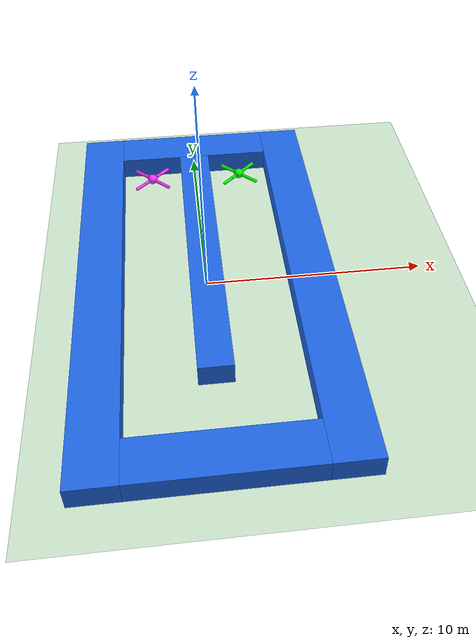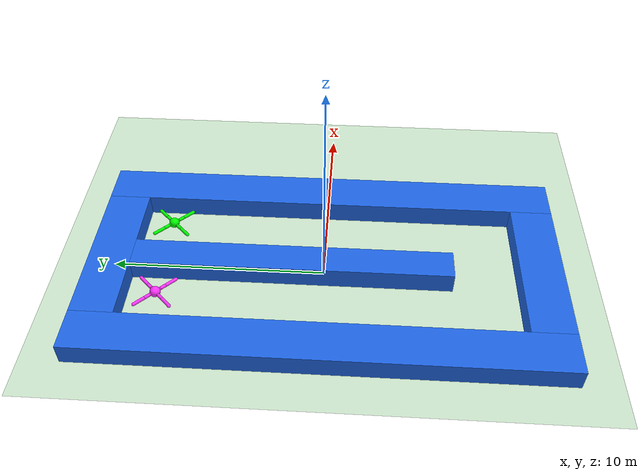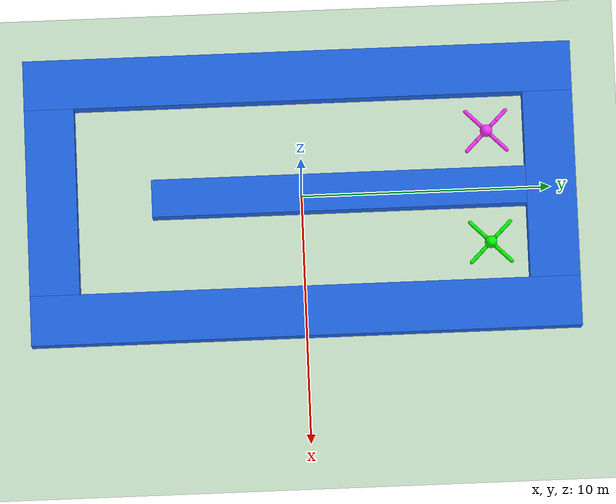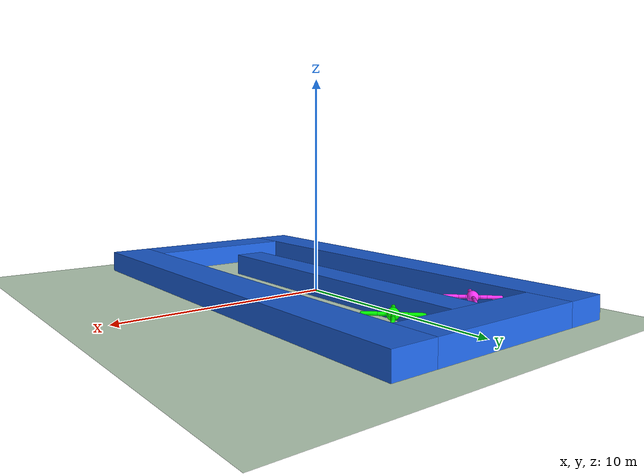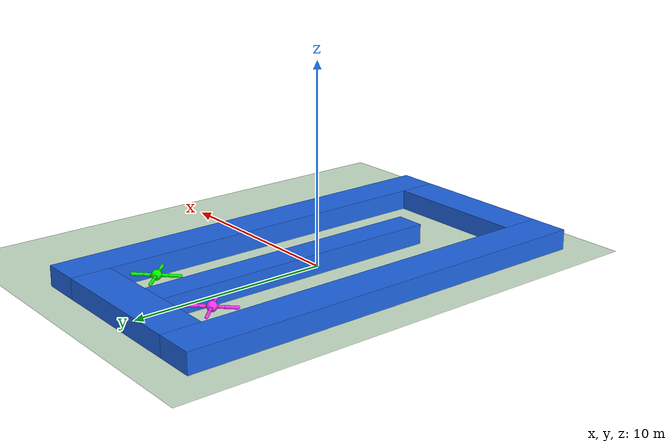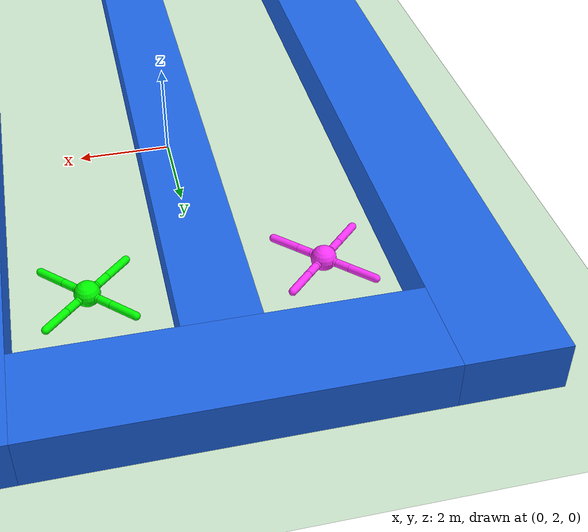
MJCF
<?xml version="1.0" encoding="utf-8"?>
<mujoco model="antmaze">
    <include file="config_dt3.xml"></include>
    <include file="assets.xml"></include>
    <worldbody>
        <light cutoff="100" diffuse="1 1 1" dir="-0 0 -1.3" directional="true" exponent="1" pos="0 0 1.3" specular=".1 .1 .1"/>
        <geom conaffinity="1" condim="3" material="MatPlane" name="floor" pos="0 0 0" rgba="0.8 0.9 0.8 1" size="50 50 50" type="plane"/>
        <include file="u_long.xml"></include>
        <include file="ant_start.xml"></include>
        <include file="ant_goal.xml"></include>

        <!--By default, this goal will be hidden under the floor-->
    </worldbody>
    <actuator>
        <motor ctrllimited="true" ctrlrange="-1.0 1.0" joint="hip_4" gear="10"/>
        <motor ctrllimited="true" ctrlrange="-1.0 1.0" joint="ankle_4" gear="10"/>
        <motor ctrllimited="true" ctrlrange="-1.0 1.0" joint="hip_1" gear="10"/>
        <motor ctrllimited="true" ctrlrange="-1.0 1.0" joint="ankle_1" gear="10"/>
        <motor ctrllimited="true" ctrlrange="-1.0 1.0" joint="hip_2" gear="10"/>
        <motor ctrllimited="true" ctrlrange="-1.0 1.0" joint="ankle_2" gear="10"/>
        <motor ctrllimited="true" ctrlrange="-1.0 1.0" joint="hip_3" gear="10"/>
        <motor ctrllimited="true" ctrlrange="-1.0 1.0" joint="ankle_3" gear="10"/>
    </actuator>
</mujoco>

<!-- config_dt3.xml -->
<mujoco>
    <compiler angle="degree" coordinate="local" inertiafromgeom="true"/>
    <option integrator="RK4" timestep="0.03"/>
    <default>
        <joint armature="1" damping="1" limited="true"/>
        <geom conaffinity="0" condim="3" density="5.0" friction="1 0.5 0.5" margin="0.01" rgba="0.8 0.6 0.4 1"/>
    </default>
</mujoco>

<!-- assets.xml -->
<mujoco>
    <asset>
        <texture builtin="gradient" height="100" rgb1="1 1 1" rgb2="0 0 0" type="skybox" width="100"/>
        <texture builtin="flat" height="1278" mark="cross" markrgb="1 1 1" name="texgeom" random="0.01" rgb1="0.8 0.6 0.4" rgb2="0.8 0.6 0.4" type="cube" width="127"/>
        <texture builtin="checker" height="100" width="100" name="texplane" rgb1="0.5 0.5 0.5" rgb2="0.8 0.8 0.8" type="2d"/>

        <material name="MatPlane" reflectance="0.5" shininess="1" specular="1" texrepeat="60 60" texture="texplane"/>
        <material name="geom" texture="texgeom" texuniform="true"/>

    </asset>
</mujoco>

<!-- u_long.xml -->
<mujoco>
    <body name="walls" pos="0 0 0">
        <body name="innerwall" pos="0 0 0">
            <geom type="box" pos="0 1.5 0" size="0.75 7.5 1"
                  rgba=".12 .4 .9 1"
                  contype="3" conaffinity="3" />
        </body>
        <body name="outerwall" pos="0 0 0">
            <geom type="box" pos="0 10.0 0" size="3.75 1 1"
                  rgba=".12 .4 .9 1"
                  contype="2" conaffinity="3" />
            <geom type="box" pos="0 -10.0 0" size="3.75 1 1"
                  rgba=".12 .4 .9 1"
                  contype="2" conaffinity="3" />
            <geom type="box" pos="4.75 0 0" size="1 11.0 1"
                  rgba=".12 .4 .9 1"
                  contype="2" conaffinity="3" />
            <geom type="box" pos="-4.75 0 0" size="1 11.0 1"
                  rgba=".12 .4 .9 1"
                  contype="2" conaffinity="3" />
        </body>
    </body>
</mujoco>

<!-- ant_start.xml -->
<!-- Same a gym ant but with gear ratio of 30 and sites -->
<mujoco model="ant">
    <body name="torso" pos="-2.25 7.50 0.75">
      <geom name="torso_geom" pos="0 0 0" size="0.25" type="sphere" rgba="1.0 0.2 1.0 1.0" />
      <joint armature="0" damping="0" limited="false" margin="0.01" name="root" pos="0 0 0" type="free"/>
      <body name="front_left_leg" pos="0 0 0">
        <geom fromto="0.0 0.0 0.0 0.2 0.2 0.0" name="aux_1_geom" size="0.08" type="capsule" rgba="1.0 0.2 1.0 1.0" />
        <body name="aux_1" pos="0.2 0.2 0">
          <joint axis="0 0 1" name="hip_1" pos="0.0 0.0 0.0" range="-30 30" type="hinge"/>
          <geom fromto="0.0 0.0 0.0 0.2 0.2 0.0" name="left_leg_geom" size="0.08" type="capsule" rgba="1.0 0.2 1.0 1.0" />
          <body pos="0.2 0.2 0">
            <joint axis="-1 1 0" name="ankle_1" pos="0.0 0.0 0.0" range="30 70" type="hinge"/>
            <geom fromto="0.0 0.0 0.0 0.4 0.4 0.0" name="left_ankle_geom" size="0.08" type="capsule" rgba="1.0 0.2 1.0 1.0" />
          </body>
        </body>
      </body>
      <body name="front_right_leg" pos="0 0 0">
        <geom fromto="0.0 0.0 0.0 -0.2 0.2 0.0" name="aux_2_geom" size="0.08" type="capsule" rgba="1.0 0.2 1.0 1.0" />
        <body name="aux_2" pos="-0.2 0.2 0">
          <joint axis="0 0 1" name="hip_2" pos="0.0 0.0 0.0" range="-30 30" type="hinge"/>
          <geom fromto="0.0 0.0 0.0 -0.2 0.2 0.0" name="right_leg_geom" size="0.08" type="capsule" rgba="1.0 0.2 1.0 1.0" />
          <body pos="-0.2 0.2 0">
            <joint axis="1 1 0" name="ankle_2" pos="0.0 0.0 0.0" range="-70 -30" type="hinge"/>
            <geom fromto="0.0 0.0 0.0 -0.4 0.4 0.0" name="right_ankle_geom" size="0.08" type="capsule" rgba="1.0 0.2 1.0 1.0" />
          </body>
        </body>
      </body>
      <body name="back_leg" pos="0 0 0">
        <geom fromto="0.0 0.0 0.0 -0.2 -0.2 0.0" name="aux_3_geom" size="0.08" type="capsule" rgba="1.0 0.2 1.0 1.0" />
        <body name="aux_3" pos="-0.2 -0.2 0">
          <joint axis="0 0 1" name="hip_3" pos="0.0 0.0 0.0" range="-30 30" type="hinge"/>
          <geom fromto="0.0 0.0 0.0 -0.2 -0.2 0.0" name="back_leg_geom" size="0.08" type="capsule" rgba="1.0 0.2 1.0 1.0" />
          <body pos="-0.2 -0.2 0">
            <joint axis="-1 1 0" name="ankle_3" pos="0.0 0.0 0.0" range="-70 -30" type="hinge"/>
            <geom fromto="0.0 0.0 0.0 -0.4 -0.4 0.0" name="third_ankle_geom" size="0.08" type="capsule" rgba="1.0 0.2 1.0 1.0"
            />
          </body>
        </body>
      </body>
      <body name="right_back_leg" pos="0 0 0">
        <geom fromto="0.0 0.0 0.0 0.2 -0.2 0.0" name="aux_4_geom" size="0.08" type="capsule" rgba="1.0 0.2 1.0 1.0" />
        <body name="aux_4" pos="0.2 -0.2 0">
          <joint axis="0 0 1" name="hip_4" pos="0.0 0.0 0.0" range="-30 30" type="hinge"/>
          <geom fromto="0.0 0.0 0.0 0.2 -0.2 0.0" name="rightback_leg_geom" size="0.08" type="capsule" rgba="1.0 0.2 1.0 1.0" />
          <body pos="0.2 -0.2 0">
            <joint axis="1 1 0" name="ankle_4" pos="0.0 0.0 0.0" range="30 70" type="hinge"/>
            <geom fromto="0.0 0.0 0.0 0.4 -0.4 0.0" name="fourth_ankle_geom" size="0.08" type="capsule" rgba="1.0 0.2 1.0 1.0"
                />
          </body>
        </body>
      </body>
    </body>
</mujoco>

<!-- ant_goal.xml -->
<!-- Same a gym ant but with gear ratio of 30 and sites -->
<mujoco model="ant">
    <body name="goal_torso" pos="2.25 7.50 0.75">
      <geom name="goal_torso_geom" pos="0 0 0" size="0.25" type="sphere" rgba="0.0 1.0 0.0 1.0"/>
      <joint armature="0" damping="0" limited="false" margin="0.01" name="goal_root" pos="0 0 0" type="free"/>
      <body name="goal_front_left_leg" pos="0 0 0">
        <geom fromto="0.0 0.0 0.0 0.2 0.2 0.0" name="goal_aux_1_geom" size="0.08" type="capsule" rgba="0.0 1.0 0.0 1.0"/>
        <body name="goal_aux_1" pos="0.2 0.2 0">
          <joint axis="0 0 1" name="goal_hip_1" pos="0.0 0.0 0.0" range="-30 30" type="hinge"/>
          <geom fromto="0.0 0.0 0.0 0.2 0.2 0.0" name="goal_left_leg_geom" size="0.08" type="capsule" rgba="0.0 1.0 0.0 1.0"/>
          <body pos="0.2 0.2 0">
            <joint axis="-1 1 0" name="goal_ankle_1" pos="0.0 0.0 0.0" range="30 70" type="hinge"/>
            <geom fromto="0.0 0.0 0.0 0.4 0.4 0.0" name="goal_left_ankle_geom" size="0.08" type="capsule" rgba="0.0 1.0 0.0 1.0"/>
          </body>
        </body>
      </body>
      <body name="goal_front_right_leg" pos="0 0 0">
        <geom fromto="0.0 0.0 0.0 -0.2 0.2 0.0" name="goal_aux_2_geom" size="0.08" type="capsule" rgba="0.0 1.0 0.0 1.0"/>
        <body name="goal_aux_2" pos="-0.2 0.2 0">
          <joint axis="0 0 1" name="goal_hip_2" pos="0.0 0.0 0.0" range="-30 30" type="hinge"/>
          <geom fromto="0.0 0.0 0.0 -0.2 0.2 0.0" name="goal_right_leg_geom" size="0.08" type="capsule" rgba="0.0 1.0 0.0 1.0"/>
          <body pos="-0.2 0.2 0">
            <joint axis="1 1 0" name="goal_ankle_2" pos="0.0 0.0 0.0" range="-70 -30" type="hinge"/>
            <geom fromto="0.0 0.0 0.0 -0.4 0.4 0.0" name="goal_right_ankle_geom" size="0.08" type="capsule" rgba="0.0 1.0 0.0 1.0"/>
          </body>
        </body>
      </body>
      <body name="goal_back_leg" pos="0 0 0">
        <geom fromto="0.0 0.0 0.0 -0.2 -0.2 0.0" name="goal_aux_3_geom" size="0.08" type="capsule" rgba="0.0 1.0 0.0 1.0"/>
        <body name="goal_aux_3" pos="-0.2 -0.2 0">
          <joint axis="0 0 1" name="goal_hip_3" pos="0.0 0.0 0.0" range="-30 30" type="hinge"/>
          <geom fromto="0.0 0.0 0.0 -0.2 -0.2 0.0" name="goal_back_leg_geom" size="0.08" type="capsule" rgba="0.0 1.0 0.0 1.0"/>
          <body pos="-0.2 -0.2 0">
            <joint axis="-1 1 0" name="goal_ankle_3" pos="0.0 0.0 0.0" range="-70 -30" type="hinge"/>
            <geom fromto="0.0 0.0 0.0 -0.4 -0.4 0.0" name="goal_third_ankle_geom" size="0.08" type="capsule"
            rgba="0.0 1.0 0.0 1.0"/>
          </body>
        </body>
      </body>
      <body name="goal_right_back_leg" pos="0 0 0">
        <geom fromto="0.0 0.0 0.0 0.2 -0.2 0.0" name="goal_aux_4_geom" size="0.08" type="capsule" rgba="0.0 1.0 0.0 1.0"/>
        <body name="goal_aux_4" pos="0.2 -0.2 0">
          <joint axis="0 0 1" name="goal_hip_4" pos="0.0 0.0 0.0" range="-30 30" type="hinge"/>
          <geom fromto="0.0 0.0 0.0 0.2 -0.2 0.0" name="goal_rightback_leg_geom" size="0.08" type="capsule" rgba="0.0 1.0 0.0 1.0"/>
          <body pos="0.2 -0.2 0">
            <joint axis="1 1 0" name="goal_ankle_4" pos="0.0 0.0 0.0" range="30 70" type="hinge"/>
            <geom fromto="0.0 0.0 0.0 0.4 -0.4 0.0" name="goal_fourth_ankle_geom" size="0.08" type="capsule"
                rgba="0.0 1.0 0.0 1.0"/>
          </body>
        </body>
      </body>
    </body>
</mujoco>
